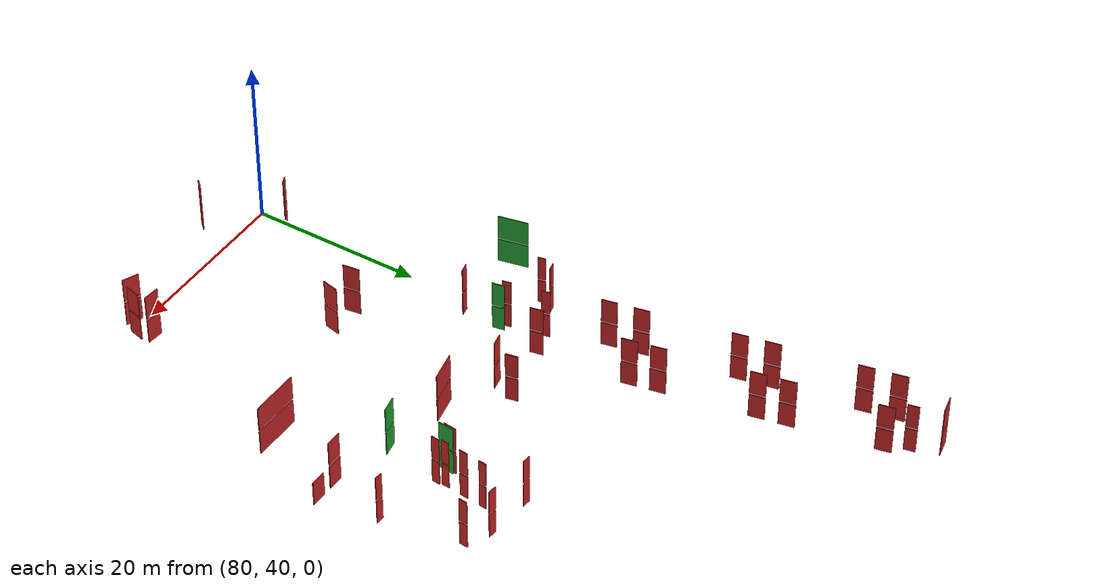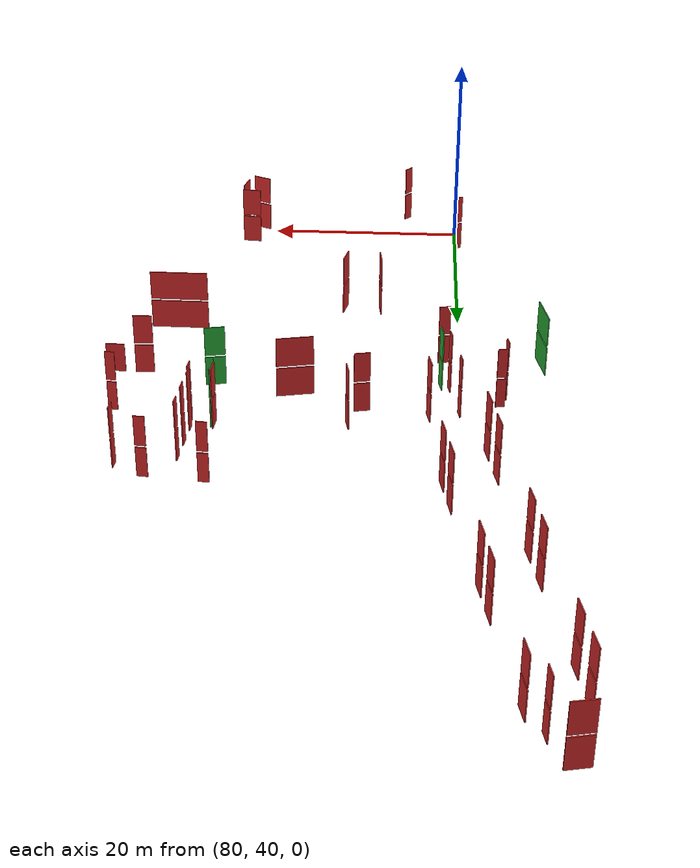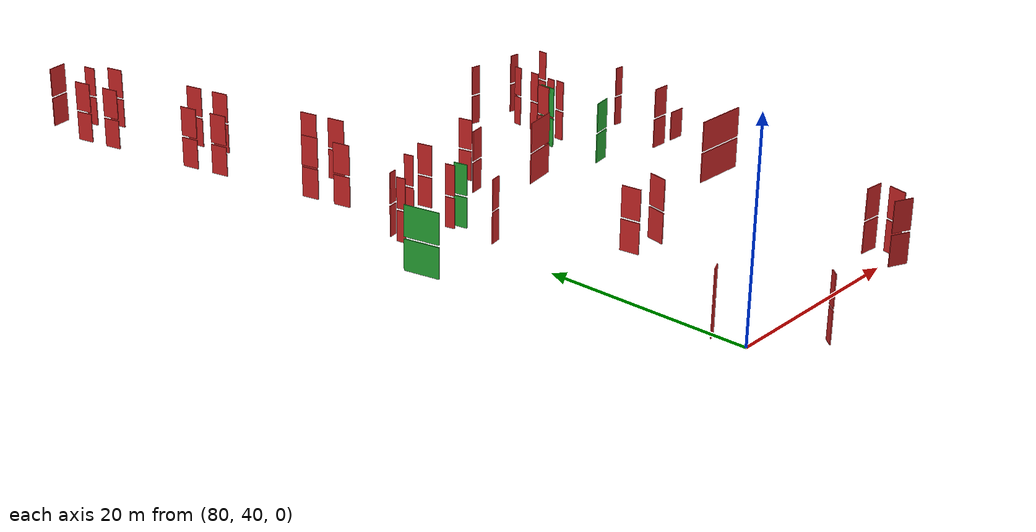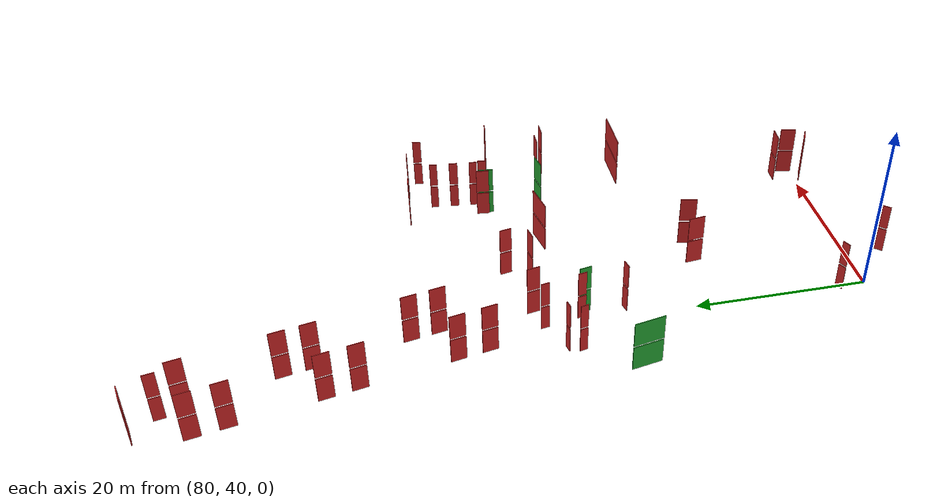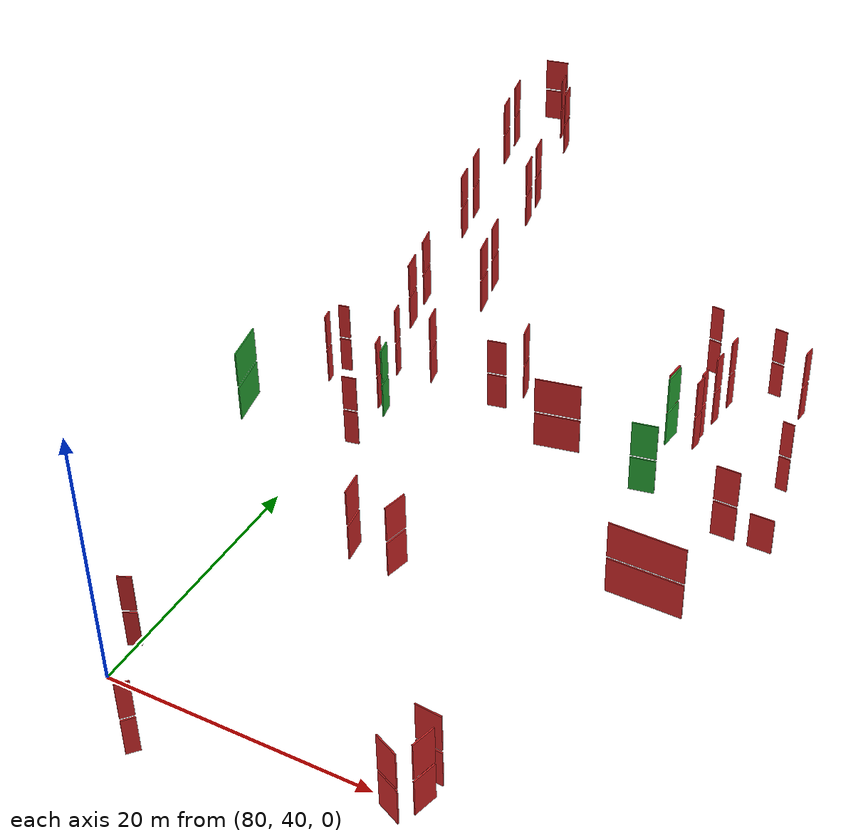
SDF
<sdf version="1.6">
 <world name="default">
  <model name="door_80.2_77.2_0.0">
   <static>true</static>
   <pose>80.19499999997788 77.22500000009313 1.5 0 0 -1.3773690000310248</pose>
   <link name="link">
    <visual name="visual">
     <geometry><box><size>0.9884331031966657 0.1 3</size></box></geometry>
     <material>
      <script><uri>file://media/materials/scripts/gazebo.material</uri><name>Gazebo/Red</name></script>
     </material>
    </visual>
   </link>
  </model>
  <model name="door_112.2_77.9_0.0">
   <static>true</static>
   <pose>112.1699999999837 77.92500000004657 1.5 0 0 -0.09966865283695012</pose>
   <link name="link">
    <visual name="visual">
     <geometry><box><size>0.9044888059555555 0.1 3</size></box></geometry>
     <material>
      <script><uri>file://media/materials/scripts/gazebo.material</uri><name>Gazebo/Red</name></script>
     </material>
    </visual>
   </link>
  </model>
  <model name="door_104.7_79.7_0.0">
   <static>true</static>
   <pose>104.70999999999185 79.65999999991618 1.5 0 0 -1.6724851785951633</pose>
   <link name="link">
    <visual name="visual">
     <geometry><box><size>0.9850888284669952 0.1 3</size></box></geometry>
     <material>
      <script><uri>file://media/materials/scripts/gazebo.material</uri><name>Gazebo/Red</name></script>
     </material>
    </visual>
   </link>
  </model>
  <model name="door_104.9_83.1_0.0">
   <static>true</static>
   <pose>104.86999999999534 83.12999999988824 1.5 0 0 1.4711276743267871</pose>
   <link name="link">
    <visual name="visual">
     <geometry><box><size>1.0049875621097721 0.1 3</size></box></geometry>
     <material>
      <script><uri>file://media/materials/scripts/gazebo.material</uri><name>Gazebo/Red</name></script>
     </material>
    </visual>
   </link>
  </model>
  <model name="door_105.1_85.5_0.0">
   <static>true</static>
   <pose>105.10999999998603 85.53499999991618 1.5 0 0 1.4589060606653106</pose>
   <link name="link">
    <visual name="visual">
     <geometry><box><size>0.895600357429266 0.1 3</size></box></geometry>
     <material>
      <script><uri>file://media/materials/scripts/gazebo.material</uri><name>Gazebo/Red</name></script>
     </material>
    </visual>
   </link>
  </model>
  <model name="door_110.6_86.8_0.0">
   <static>true</static>
   <pose>110.55999999999767 86.81499999994412 1.5 0 0 1.4701276746829237</pose>
   <link name="link">
    <visual name="visual">
     <geometry><box><size>0.9950376879485058 0.1 3</size></box></geometry>
     <material>
      <script><uri>file://media/materials/scripts/gazebo.material</uri><name>Gazebo/Red</name></script>
     </material>
    </visual>
   </link>
  </model>
  <model name="door_102.4_88.9_0.0">
   <static>true</static>
   <pose>102.38000000000466 88.94000000017695 1.5 0 0 -0.09966865258337218</pose>
   <link name="link">
    <visual name="visual">
     <geometry><box><size>1.004987562121356 0.1 3</size></box></geometry>
     <material>
      <script><uri>file://media/materials/scripts/gazebo.material</uri><name>Gazebo/Red</name></script>
     </material>
    </visual>
   </link>
  </model>
  <model name="door_107.8_88.4_0.0">
   <static>true</static>
   <pose>107.78999999997905 88.4000000001397 1.5 0 0 -0.09966865258337218</pose>
   <link name="link">
    <visual name="visual">
     <geometry><box><size>1.004987562121356 0.1 3</size></box></geometry>
     <material>
      <script><uri>file://media/materials/scripts/gazebo.material</uri><name>Gazebo/Red</name></script>
     </material>
    </visual>
   </link>
  </model>
  <model name="door_102.5_80.0_0.0">
   <static>true</static>
   <pose>102.52499999999418 79.9550000000745 1.5 0 0 -1.6711294309773623</pose>
   <link name="link">
    <visual name="visual">
     <geometry><box><size>1.4975313020620318 0.1 3</size></box></geometry>
     <material>
      <script><uri>file://media/materials/scripts/gazebo.material</uri><name>Gazebo/Red</name></script>
     </material>
    </visual>
   </link>
  </model>
  <model name="door_102.7_79.6_0.0">
   <static>true</static>
   <pose>102.69000000006054 79.59000000008382 1.5 0 0 1.4711276742268928</pose>
   <link name="link">
    <visual name="visual">
     <geometry><box><size>1.808977612096451 0.1 3</size></box></geometry>
     <material>
      <script><uri>file://media/materials/scripts/gazebo.material</uri><name>Gazebo/Green</name></script>
     </material>
    </visual>
   </link>
  </model>
  <model name="door_104.6_80.8_0.0">
   <static>true</static>
   <pose>104.625 80.77000000001863 1.5 0 0 -1.6704649792092168</pose>
   <link name="link">
    <visual name="visual">
     <geometry><box><size>0.904488806268317 0.1 3</size></box></geometry>
     <material>
      <script><uri>file://media/materials/scripts/gazebo.material</uri><name>Gazebo/Red</name></script>
     </material>
    </visual>
   </link>
  </model>
  <model name="door_113.0_71.1_0.0">
   <static>true</static>
   <pose>113.03500000000349 71.13000000012107 1.5 0 0 3.1305433795001205</pose>
   <link name="link">
    <visual name="visual">
     <geometry><box><size>1.810110493862824 0.1 3</size></box></geometry>
     <material>
      <script><uri>file://media/materials/scripts/gazebo.material</uri><name>Gazebo/Red</name></script>
     </material>
    </visual>
   </link>
  </model>
  <model name="door_110.2_71.2_0.0">
   <static>true</static>
   <pose>110.23500000001513 71.17000000015832 1.5 0 0 3.1305433795001205</pose>
   <link name="link">
    <visual name="visual">
     <geometry><box><size>1.810110493862824 0.1 3</size></box></geometry>
     <material>
      <script><uri>file://media/materials/scripts/gazebo.material</uri><name>Gazebo/Red</name></script>
     </material>
    </visual>
   </link>
  </model>
  <model name="door_103.2_73.0_0.0">
   <static>true</static>
   <pose>103.15500000014435 73.02000000025146 1.5 0 0 -2.9552965370366153</pose>
   <link name="link">
    <visual name="visual">
     <geometry><box><size>1.9436306230085285 0.1 3</size></box></geometry>
     <material>
      <script><uri>file://media/materials/scripts/gazebo.material</uri><name>Gazebo/Green</name></script>
     </material>
    </visual>
   </link>
  </model>
  <model name="door_71.7_114.6_0.0">
   <static>true</static>
   <pose>71.72999999998137 114.55000000004657 1.5 0 0 -1.3690339825092397</pose>
   <link name="link">
    <visual name="visual">
     <geometry><box><size>1.796440926065282 0.1 3</size></box></geometry>
     <material>
      <script><uri>file://media/materials/scripts/gazebo.material</uri><name>Gazebo/Red</name></script>
     </material>
    </visual>
   </link>
  </model>
  <model name="door_72.4_111.0_0.0">
   <static>true</static>
   <pose>72.43499999999767 111.04000000003725 1.5 0 0 -1.3744936626731843</pose>
   <link name="link">
    <visual name="visual">
     <geometry><box><size>1.7944637079631676 0.1 3</size></box></geometry>
     <material>
      <script><uri>file://media/materials/scripts/gazebo.material</uri><name>Gazebo/Red</name></script>
     </material>
    </visual>
   </link>
  </model>
  <model name="door_74.4_101.3_0.0">
   <static>true</static>
   <pose>74.38000000000466 101.26000000000931 1.5 0 0 -1.3690339825092397</pose>
   <link name="link">
    <visual name="visual">
     <geometry><box><size>1.796440926065282 0.1 3</size></box></geometry>
     <material>
      <script><uri>file://media/materials/scripts/gazebo.material</uri><name>Gazebo/Red</name></script>
     </material>
    </visual>
   </link>
  </model>
  <model name="door_75.1_97.8_0.0">
   <static>true</static>
   <pose>75.0800000000163 97.75 1.5 0 0 -1.3690339824572944</pose>
   <link name="link">
    <visual name="visual">
     <geometry><box><size>1.7964409256090668 0.1 3</size></box></geometry>
     <material>
      <script><uri>file://media/materials/scripts/gazebo.material</uri><name>Gazebo/Red</name></script>
     </material>
    </visual>
   </link>
  </model>
  <model name="door_77.2_87.2_0.0">
   <static>true</static>
   <pose>77.19000000000233 87.18999999994412 1.5 0 0 -1.3690339824572944</pose>
   <link name="link">
    <visual name="visual">
     <geometry><box><size>1.7964409256090668 0.1 3</size></box></geometry>
     <material>
      <script><uri>file://media/materials/scripts/gazebo.material</uri><name>Gazebo/Red</name></script>
     </material>
    </visual>
   </link>
  </model>
  <model name="door_77.9_83.7_0.0">
   <static>true</static>
   <pose>77.88500000000931 83.6699999999255 1.5 0 0 -1.3744936626731843</pose>
   <link name="link">
    <visual name="visual">
     <geometry><box><size>1.7944637079631676 0.1 3</size></box></geometry>
     <material>
      <script><uri>file://media/materials/scripts/gazebo.material</uri><name>Gazebo/Red</name></script>
     </material>
    </visual>
   </link>
  </model>
  <model name="door_76.4_75.6_0.0">
   <static>true</static>
   <pose>76.39000000001397 75.57500000018626 1.5 0 0 0.19083110263865674</pose>
   <link name="link">
    <visual name="visual">
     <geometry><box><size>0.8962700485807075 0.1 3</size></box></geometry>
     <material>
      <script><uri>file://media/materials/scripts/gazebo.material</uri><name>Gazebo/Red</name></script>
     </material>
    </visual>
   </link>
  </model>
  <model name="door_75.8_74.0_0.0">
   <static>true</static>
   <pose>75.83999999999651 74.0 1.5 0 0 -1.3690339824572944</pose>
   <link name="link">
    <visual name="visual">
     <geometry><box><size>0.8982204628045334 0.1 3</size></box></geometry>
     <material>
      <script><uri>file://media/materials/scripts/gazebo.material</uri><name>Gazebo/Red</name></script>
     </material>
    </visual>
   </link>
  </model>
  <model name="door_78.6_105.4_0.0">
   <static>true</static>
   <pose>78.55999999999767 105.38999999989755 1.5 0 0 -1.3690339825092397</pose>
   <link name="link">
    <visual name="visual">
     <geometry><box><size>1.796440926065282 0.1 3</size></box></geometry>
     <material>
      <script><uri>file://media/materials/scripts/gazebo.material</uri><name>Gazebo/Red</name></script>
     </material>
    </visual>
   </link>
  </model>
  <model name="door_76.5_115.5_0.0">
   <static>true</static>
   <pose>76.53999999997905 115.50500000012107 1.5 0 0 -1.3701434494846443</pose>
   <link name="link">
    <visual name="visual">
     <geometry><box><size>1.8062391868343128 0.1 3</size></box></geometry>
     <material>
      <script><uri>file://media/materials/scripts/gazebo.material</uri><name>Gazebo/Red</name></script>
     </material>
    </visual>
   </link>
  </model>
  <model name="door_79.2_102.2_0.0">
   <static>true</static>
   <pose>79.18499999999767 102.20999999996275 1.5 0 0 -1.3744936626731843</pose>
   <link name="link">
    <visual name="visual">
     <geometry><box><size>1.7944637079631676 0.1 3</size></box></geometry>
     <material>
      <script><uri>file://media/materials/scripts/gazebo.material</uri><name>Gazebo/Red</name></script>
     </material>
    </visual>
   </link>
  </model>
  <model name="door_81.3_91.7_0.0">
   <static>true</static>
   <pose>81.2949999999837 91.65999999991618 1.5 0 0 -1.374493662723798</pose>
   <link name="link">
    <visual name="visual">
     <geometry><box><size>1.7944637084198858 0.1 3</size></box></geometry>
     <material>
      <script><uri>file://media/materials/scripts/gazebo.material</uri><name>Gazebo/Red</name></script>
     </material>
    </visual>
   </link>
  </model>
  <model name="door_81.1_72.9_0.0">
   <static>true</static>
   <pose>81.05000000001746 72.92000000015832 1.5 0 0 1.7721134351846652</pose>
   <link name="link">
    <visual name="visual">
     <geometry><box><size>1.0001999799880765 0.1 3</size></box></geometry>
     <material>
      <script><uri>file://media/materials/scripts/gazebo.material</uri><name>Gazebo/Red</name></script>
     </material>
    </visual>
   </link>
  </model>
  <model name="door_81.6_67.9_0.0">
   <static>true</static>
   <pose>81.55000000001746 67.88999999989755 1.5 0 0 0.2009542638673007</pose>
   <link name="link">
    <visual name="visual">
     <geometry><box><size>1.1021796587332557 0.1 3</size></box></geometry>
     <material>
      <script><uri>file://media/materials/scripts/gazebo.material</uri><name>Gazebo/Red</name></script>
     </material>
    </visual>
   </link>
  </model>
  <model name="door_75.1_117.8_0.0">
   <static>true</static>
   <pose>75.06500000000233 117.75500000012107 1.5 0 0 -1.376431060702658</pose>
   <link name="link">
    <visual name="visual">
     <geometry><box><size>1.2943724348298333 0.1 3</size></box></geometry>
     <material>
      <script><uri>file://media/materials/scripts/gazebo.material</uri><name>Gazebo/Red</name></script>
     </material>
    </visual>
   </link>
  </model>
  <model name="door_108.0_62.3_0.0">
   <static>true</static>
   <pose>107.99499999999534 62.34499999997206 1.5 0 0 -0.012258580285916719</pose>
   <link name="link">
    <visual name="visual">
     <geometry><box><size>5.710429055644689 0.1 3</size></box></geometry>
     <material>
      <script><uri>file://media/materials/scripts/gazebo.material</uri><name>Gazebo/Red</name></script>
     </material>
    </visual>
   </link>
  </model>
  <model name="door_79.8_43.2_0.0">
   <static>true</static>
   <pose>79.82500000001164 43.18500000005588 1.5 0 0 0.42331075582642225</pose>
   <link name="link">
    <visual name="visual">
     <geometry><box><size>0.9980981916532635 0.1 3</size></box></geometry>
     <material>
      <script><uri>file://media/materials/scripts/gazebo.material</uri><name>Gazebo/Red</name></script>
     </material>
    </visual>
   </link>
  </model>
  <model name="door_85.3_35.8_0.0">
   <static>true</static>
   <pose>85.27999999999884 35.77000000001863 1.5 0 0 0.8424789459730314</pose>
   <link name="link">
    <visual name="visual">
     <geometry><box><size>0.9915644206490059 0.1 3</size></box></geometry>
     <material>
      <script><uri>file://media/materials/scripts/gazebo.material</uri><name>Gazebo/Red</name></script>
     </material>
    </visual>
   </link>
  </model>
  <model name="door_102.6_42.5_0.0">
   <static>true</static>
   <pose>102.60500000001048 42.48999999999069 1.5 0 0 -0.08271241528552369</pose>
   <link name="link">
    <visual name="visual">
     <geometry><box><size>1.9366207682124321 0.1 3</size></box></geometry>
     <material>
      <script><uri>file://media/materials/scripts/gazebo.material</uri><name>Gazebo/Red</name></script>
     </material>
    </visual>
   </link>
  </model>
  <model name="door_101.7_39.1_0.0">
   <static>true</static>
   <pose>101.71000000002095 39.06499999994412 1.5 0 0 -0.4219085234522241</pose>
   <link name="link">
    <visual name="visual">
     <geometry><box><size>1.9291708063548034 0.1 3</size></box></geometry>
     <material>
      <script><uri>file://media/materials/scripts/gazebo.material</uri><name>Gazebo/Red</name></script>
     </material>
    </visual>
   </link>
  </model>
  <model name="door_103.3_40.6_0.0">
   <static>true</static>
   <pose>103.3299999999872 40.59000000008382 1.5 0 0 -1.823690391929414</pose>
   <link name="link">
    <visual name="visual">
     <geometry><box><size>1.8384776308918926 0.1 3</size></box></geometry>
     <material>
      <script><uri>file://media/materials/scripts/gazebo.material</uri><name>Gazebo/Red</name></script>
     </material>
    </visual>
   </link>
  </model>
  <model name="door_87.9_57.8_0.0">
   <static>true</static>
   <pose>87.93499999999767 57.77499999990687 1.5 0 0 -1.4509545189031208</pose>
   <link name="link">
    <visual name="visual">
     <geometry><box><size>1.9237983263743257 0.1 3</size></box></geometry>
     <material>
      <script><uri>file://media/materials/scripts/gazebo.material</uri><name>Gazebo/Red</name></script>
     </material>
    </visual>
   </link>
  </model>
  <model name="door_91.5_57.6_0.0">
   <static>true</static>
   <pose>91.49500000002445 57.58999999985099 1.5 0 0 -1.795651920405678</pose>
   <link name="link">
    <visual name="visual">
     <geometry><box><size>1.9285486770039746 0.1 3</size></box></geometry>
     <material>
      <script><uri>file://media/materials/scripts/gazebo.material</uri><name>Gazebo/Red</name></script>
     </material>
    </visual>
   </link>
  </model>
  <model name="door_89.2_76.9_0.0">
   <static>true</static>
   <pose>89.17999999999302 76.94499999983236 1.5 0 0 0.19349440931601616</pose>
   <link name="link">
    <visual name="visual">
     <geometry><box><size>1.508144555394632 0.1 3</size></box></geometry>
     <material>
      <script><uri>file://media/materials/scripts/gazebo.material</uri><name>Gazebo/Red</name></script>
     </material>
    </visual>
   </link>
  </model>
  <model name="door_81.9_88.5_0.0">
   <static>true</static>
   <pose>81.91500000000815 88.53499999991618 1.5 0 0 -1.3755746765469539</pose>
   <link name="link">
    <visual name="visual">
     <geometry><box><size>1.8042727066855455 0.1 3</size></box></geometry>
     <material>
      <script><uri>file://media/materials/scripts/gazebo.material</uri><name>Gazebo/Red</name></script>
     </material>
    </visual>
   </link>
  </model>
  <model name="door_83.0_77.9_0.0">
   <static>true</static>
   <pose>83.01999999998952 77.89500000001863 1.5 0 0 -1.3721104451170056</pose>
   <link name="link">
    <visual name="visual">
     <geometry><box><size>1.51990131280261 0.1 3</size></box></geometry>
     <material>
      <script><uri>file://media/materials/scripts/gazebo.material</uri><name>Gazebo/Red</name></script>
     </material>
    </visual>
   </link>
  </model>
  <model name="door_81.9_72.4_0.0">
   <static>true</static>
   <pose>81.875 72.38500000000931 1.5 0 0 1.7681918866447774</pose>
   <link name="link">
    <visual name="visual">
     <geometry><box><size>1.3767352687650285 0.1 3</size></box></geometry>
     <material>
      <script><uri>file://media/materials/scripts/gazebo.material</uri><name>Gazebo/Green</name></script>
     </material>
    </visual>
   </link>
  </model>
  <model name="door_73.0_120.5_0.0">
   <static>true</static>
   <pose>73.04000000000815 120.50499999988824 1.5 0 0 0.19646185337495456</pose>
   <link name="link">
    <visual name="visual">
     <geometry><box><size>2.100404722931416 0.1 3</size></box></geometry>
     <material>
      <script><uri>file://media/materials/scripts/gazebo.material</uri><name>Gazebo/Red</name></script>
     </material>
    </visual>
   </link>
  </model>
  <model name="door_95.5_74.5_0.0">
   <static>true</static>
   <pose>95.51500000001397 74.51000000000931 1.5 0 0 0.19351316121262999</pose>
   <link name="link">
    <visual name="visual">
     <geometry><box><size>3.5360005656156344 0.1 3</size></box></geometry>
     <material>
      <script><uri>file://media/materials/scripts/gazebo.material</uri><name>Gazebo/Red</name></script>
     </material>
    </visual>
   </link>
  </model>
  <model name="door_72.2_68.0_0.0">
   <static>true</static>
   <pose>72.16500000003725 68.04500000015832 1.5 0 0 1.767083239622093</pose>
   <link name="link">
    <visual name="visual">
     <geometry><box><size>3.5379372523187618 0.1 3</size></box></geometry>
     <material>
      <script><uri>file://media/materials/scripts/gazebo.material</uri><name>Gazebo/Green</name></script>
     </material>
    </visual>
   </link>
  </model>
  <model name="door_90.4_79.5_0.0">
   <static>true</static>
   <pose>90.41000000000349 79.52499999990687 1.5 0 0 -1.369193218179265</pose>
   <link name="link">
    <visual name="visual">
     <geometry><box><size>1.3983204211800917 0.1 3</size></box></geometry>
     <material>
      <script><uri>file://media/materials/scripts/gazebo.material</uri><name>Gazebo/Red</name></script>
     </material>
    </visual>
   </link>
  </model>
  <model name="door_80.2_77.2_3.2">
   <static>true</static>
   <pose>80.19499999997788 77.22500000009313 4.7 0 0 -1.3773690000310248</pose>
   <link name="link">
    <visual name="visual">
     <geometry><box><size>0.9884331031966657 0.1 3</size></box></geometry>
     <material>
      <script><uri>file://media/materials/scripts/gazebo.material</uri><name>Gazebo/Red</name></script>
     </material>
    </visual>
   </link>
  </model>
  <model name="door_112.2_77.9_3.2">
   <static>true</static>
   <pose>112.1699999999837 77.92500000004657 4.7 0 0 -0.09966865283695012</pose>
   <link name="link">
    <visual name="visual">
     <geometry><box><size>0.9044888059555555 0.1 3</size></box></geometry>
     <material>
      <script><uri>file://media/materials/scripts/gazebo.material</uri><name>Gazebo/Red</name></script>
     </material>
    </visual>
   </link>
  </model>
  <model name="door_104.7_79.7_3.2">
   <static>true</static>
   <pose>104.70999999999185 79.65999999991618 4.7 0 0 -1.6724851785951633</pose>
   <link name="link">
    <visual name="visual">
     <geometry><box><size>0.9850888284669952 0.1 3</size></box></geometry>
     <material>
      <script><uri>file://media/materials/scripts/gazebo.material</uri><name>Gazebo/Red</name></script>
     </material>
    </visual>
   </link>
  </model>
  <model name="door_104.9_83.1_3.2">
   <static>true</static>
   <pose>104.86999999999534 83.12999999988824 4.7 0 0 1.4711276743267871</pose>
   <link name="link">
    <visual name="visual">
     <geometry><box><size>1.0049875621097721 0.1 3</size></box></geometry>
     <material>
      <script><uri>file://media/materials/scripts/gazebo.material</uri><name>Gazebo/Red</name></script>
     </material>
    </visual>
   </link>
  </model>
  <model name="door_105.1_85.5_3.2">
   <static>true</static>
   <pose>105.10999999998603 85.53499999991618 4.7 0 0 1.4589060606653106</pose>
   <link name="link">
    <visual name="visual">
     <geometry><box><size>0.895600357429266 0.1 3</size></box></geometry>
     <material>
      <script><uri>file://media/materials/scripts/gazebo.material</uri><name>Gazebo/Red</name></script>
     </material>
    </visual>
   </link>
  </model>
  <model name="door_110.6_86.8_3.2">
   <static>true</static>
   <pose>110.55999999999767 86.81499999994412 4.7 0 0 1.4701276746829237</pose>
   <link name="link">
    <visual name="visual">
     <geometry><box><size>0.9950376879485058 0.1 3</size></box></geometry>
     <material>
      <script><uri>file://media/materials/scripts/gazebo.material</uri><name>Gazebo/Red</name></script>
     </material>
    </visual>
   </link>
  </model>
  <model name="door_102.4_88.9_3.2">
   <static>true</static>
   <pose>102.38000000000466 88.94000000017695 4.7 0 0 -0.09966865258337218</pose>
   <link name="link">
    <visual name="visual">
     <geometry><box><size>1.004987562121356 0.1 3</size></box></geometry>
     <material>
      <script><uri>file://media/materials/scripts/gazebo.material</uri><name>Gazebo/Red</name></script>
     </material>
    </visual>
   </link>
  </model>
  <model name="door_107.8_88.4_3.2">
   <static>true</static>
   <pose>107.78999999997905 88.4000000001397 4.7 0 0 -0.09966865258337218</pose>
   <link name="link">
    <visual name="visual">
     <geometry><box><size>1.004987562121356 0.1 3</size></box></geometry>
     <material>
      <script><uri>file://media/materials/scripts/gazebo.material</uri><name>Gazebo/Red</name></script>
     </material>
    </visual>
   </link>
  </model>
  <model name="door_102.5_80.0_3.2">
   <static>true</static>
   <pose>102.52499999999418 79.9550000000745 4.7 0 0 -1.6711294309773623</pose>
   <link name="link">
    <visual name="visual">
     <geometry><box><size>1.4975313020620318 0.1 3</size></box></geometry>
     <material>
      <script><uri>file://media/materials/scripts/gazebo.material</uri><name>Gazebo/Red</name></script>
     </material>
    </visual>
   </link>
  </model>
  <model name="door_102.7_79.6_3.2">
   <static>true</static>
   <pose>102.69000000006054 79.59000000008382 4.7 0 0 1.4711276742268928</pose>
   <link name="link">
    <visual name="visual">
     <geometry><box><size>1.808977612096451 0.1 3</size></box></geometry>
     <material>
      <script><uri>file://media/materials/scripts/gazebo.material</uri><name>Gazebo/Green</name></script>
     </material>
    </visual>
   </link>
  </model>
  <model name="door_104.6_80.8_3.2">
   <static>true</static>
   <pose>104.625 80.77000000001863 4.7 0 0 -1.6704649792092168</pose>
   <link name="link">
    <visual name="visual">
     <geometry><box><size>0.904488806268317 0.1 3</size></box></geometry>
     <material>
      <script><uri>file://media/materials/scripts/gazebo.material</uri><name>Gazebo/Red</name></script>
     </material>
    </visual>
   </link>
  </model>
  <model name="door_110.2_71.2_3.2">
   <static>true</static>
   <pose>110.23500000001513 71.17000000015832 4.7 0 0 3.1305433795001205</pose>
   <link name="link">
    <visual name="visual">
     <geometry><box><size>1.810110493862824 0.1 3</size></box></geometry>
     <material>
      <script><uri>file://media/materials/scripts/gazebo.material</uri><name>Gazebo/Red</name></script>
     </material>
    </visual>
   </link>
  </model>
  <model name="door_103.2_73.0_3.2">
   <static>true</static>
   <pose>103.15500000014435 73.02000000025146 4.7 0 0 -2.9552965370366153</pose>
   <link name="link">
    <visual name="visual">
     <geometry><box><size>1.9436306230085285 0.1 3</size></box></geometry>
     <material>
      <script><uri>file://media/materials/scripts/gazebo.material</uri><name>Gazebo/Green</name></script>
     </material>
    </visual>
   </link>
  </model>
  <model name="door_71.7_114.6_3.2">
   <static>true</static>
   <pose>71.72999999998137 114.55000000004657 4.7 0 0 -1.3690339825092397</pose>
   <link name="link">
    <visual name="visual">
     <geometry><box><size>1.796440926065282 0.1 3</size></box></geometry>
     <material>
      <script><uri>file://media/materials/scripts/gazebo.material</uri><name>Gazebo/Red</name></script>
     </material>
    </visual>
   </link>
  </model>
  <model name="door_72.4_111.0_3.2">
   <static>true</static>
   <pose>72.43499999999767 111.04000000003725 4.7 0 0 -1.3744936626731843</pose>
   <link name="link">
    <visual name="visual">
     <geometry><box><size>1.7944637079631676 0.1 3</size></box></geometry>
     <material>
      <script><uri>file://media/materials/scripts/gazebo.material</uri><name>Gazebo/Red</name></script>
     </material>
    </visual>
   </link>
  </model>
  <model name="door_74.4_101.3_3.2">
   <static>true</static>
   <pose>74.38000000000466 101.26000000000931 4.7 0 0 -1.3690339825092397</pose>
   <link name="link">
    <visual name="visual">
     <geometry><box><size>1.796440926065282 0.1 3</size></box></geometry>
     <material>
      <script><uri>file://media/materials/scripts/gazebo.material</uri><name>Gazebo/Red</name></script>
     </material>
    </visual>
   </link>
  </model>
  <model name="door_75.1_97.8_3.2">
   <static>true</static>
   <pose>75.0800000000163 97.75 4.7 0 0 -1.3690339824572944</pose>
   <link name="link">
    <visual name="visual">
     <geometry><box><size>1.7964409256090668 0.1 3</size></box></geometry>
     <material>
      <script><uri>file://media/materials/scripts/gazebo.material</uri><name>Gazebo/Red</name></script>
     </material>
    </visual>
   </link>
  </model>
  <model name="door_77.2_87.2_3.2">
   <static>true</static>
   <pose>77.19000000000233 87.18999999994412 4.7 0 0 -1.3690339824572944</pose>
   <link name="link">
    <visual name="visual">
     <geometry><box><size>1.7964409256090668 0.1 3</size></box></geometry>
     <material>
      <script><uri>file://media/materials/scripts/gazebo.material</uri><name>Gazebo/Red</name></script>
     </material>
    </visual>
   </link>
  </model>
  <model name="door_77.9_83.7_3.2">
   <static>true</static>
   <pose>77.88500000000931 83.6699999999255 4.7 0 0 -1.3744936626731843</pose>
   <link name="link">
    <visual name="visual">
     <geometry><box><size>1.7944637079631676 0.1 3</size></box></geometry>
     <material>
      <script><uri>file://media/materials/scripts/gazebo.material</uri><name>Gazebo/Red</name></script>
     </material>
    </visual>
   </link>
  </model>
  <model name="door_76.4_75.6_3.2">
   <static>true</static>
   <pose>76.39000000001397 75.57500000018626 4.7 0 0 0.19083110263865674</pose>
   <link name="link">
    <visual name="visual">
     <geometry><box><size>0.8962700485807075 0.1 3</size></box></geometry>
     <material>
      <script><uri>file://media/materials/scripts/gazebo.material</uri><name>Gazebo/Red</name></script>
     </material>
    </visual>
   </link>
  </model>
  <model name="door_75.8_74.0_3.2">
   <static>true</static>
   <pose>75.83999999999651 74.0 4.7 0 0 -1.3690339824572944</pose>
   <link name="link">
    <visual name="visual">
     <geometry><box><size>0.8982204628045334 0.1 3</size></box></geometry>
     <material>
      <script><uri>file://media/materials/scripts/gazebo.material</uri><name>Gazebo/Red</name></script>
     </material>
    </visual>
   </link>
  </model>
  <model name="door_78.6_105.4_3.2">
   <static>true</static>
   <pose>78.55999999999767 105.38999999989755 4.7 0 0 -1.3690339825092397</pose>
   <link name="link">
    <visual name="visual">
     <geometry><box><size>1.796440926065282 0.1 3</size></box></geometry>
     <material>
      <script><uri>file://media/materials/scripts/gazebo.material</uri><name>Gazebo/Red</name></script>
     </material>
    </visual>
   </link>
  </model>
  <model name="door_76.5_115.5_3.2">
   <static>true</static>
   <pose>76.53999999997905 115.50500000012107 4.7 0 0 -1.3701434494846443</pose>
   <link name="link">
    <visual name="visual">
     <geometry><box><size>1.8062391868343128 0.1 3</size></box></geometry>
     <material>
      <script><uri>file://media/materials/scripts/gazebo.material</uri><name>Gazebo/Red</name></script>
     </material>
    </visual>
   </link>
  </model>
  <model name="door_79.2_102.2_3.2">
   <static>true</static>
   <pose>79.18499999999767 102.20999999996275 4.7 0 0 -1.3744936626731843</pose>
   <link name="link">
    <visual name="visual">
     <geometry><box><size>1.7944637079631676 0.1 3</size></box></geometry>
     <material>
      <script><uri>file://media/materials/scripts/gazebo.material</uri><name>Gazebo/Red</name></script>
     </material>
    </visual>
   </link>
  </model>
  <model name="door_81.3_91.7_3.2">
   <static>true</static>
   <pose>81.2949999999837 91.65999999991618 4.7 0 0 -1.374493662723798</pose>
   <link name="link">
    <visual name="visual">
     <geometry><box><size>1.7944637084198858 0.1 3</size></box></geometry>
     <material>
      <script><uri>file://media/materials/scripts/gazebo.material</uri><name>Gazebo/Red</name></script>
     </material>
    </visual>
   </link>
  </model>
  <model name="door_81.1_72.9_3.2">
   <static>true</static>
   <pose>81.05000000001746 72.92000000015832 4.7 0 0 1.7721134351846652</pose>
   <link name="link">
    <visual name="visual">
     <geometry><box><size>1.0001999799880765 0.1 3</size></box></geometry>
     <material>
      <script><uri>file://media/materials/scripts/gazebo.material</uri><name>Gazebo/Red</name></script>
     </material>
    </visual>
   </link>
  </model>
  <model name="door_81.6_67.9_3.2">
   <static>true</static>
   <pose>81.55000000001746 67.88999999989755 4.7 0 0 0.2009542638673007</pose>
   <link name="link">
    <visual name="visual">
     <geometry><box><size>1.1021796587332557 0.1 3</size></box></geometry>
     <material>
      <script><uri>file://media/materials/scripts/gazebo.material</uri><name>Gazebo/Red</name></script>
     </material>
    </visual>
   </link>
  </model>
  <model name="door_75.1_117.8_3.2">
   <static>true</static>
   <pose>75.06500000000233 117.75500000012107 4.7 0 0 -1.376431060702658</pose>
   <link name="link">
    <visual name="visual">
     <geometry><box><size>1.2943724348298333 0.1 3</size></box></geometry>
     <material>
      <script><uri>file://media/materials/scripts/gazebo.material</uri><name>Gazebo/Red</name></script>
     </material>
    </visual>
   </link>
  </model>
  <model name="door_108.0_62.3_3.2">
   <static>true</static>
   <pose>107.99499999999534 62.34499999997206 4.7 0 0 -0.012258580285916719</pose>
   <link name="link">
    <visual name="visual">
     <geometry><box><size>5.710429055644689 0.1 3</size></box></geometry>
     <material>
      <script><uri>file://media/materials/scripts/gazebo.material</uri><name>Gazebo/Red</name></script>
     </material>
    </visual>
   </link>
  </model>
  <model name="door_79.8_43.2_3.2">
   <static>true</static>
   <pose>79.82500000001164 43.18500000005588 4.7 0 0 0.42331075582642225</pose>
   <link name="link">
    <visual name="visual">
     <geometry><box><size>0.9980981916532635 0.1 3</size></box></geometry>
     <material>
      <script><uri>file://media/materials/scripts/gazebo.material</uri><name>Gazebo/Red</name></script>
     </material>
    </visual>
   </link>
  </model>
  <model name="door_85.3_35.8_3.2">
   <static>true</static>
   <pose>85.27999999999884 35.77000000001863 4.7 0 0 0.8424789459730314</pose>
   <link name="link">
    <visual name="visual">
     <geometry><box><size>0.9915644206490059 0.1 3</size></box></geometry>
     <material>
      <script><uri>file://media/materials/scripts/gazebo.material</uri><name>Gazebo/Red</name></script>
     </material>
    </visual>
   </link>
  </model>
  <model name="door_102.6_42.5_3.2">
   <static>true</static>
   <pose>102.60500000001048 42.48999999999069 4.7 0 0 -0.08271241528552369</pose>
   <link name="link">
    <visual name="visual">
     <geometry><box><size>1.9366207682124321 0.1 3</size></box></geometry>
     <material>
      <script><uri>file://media/materials/scripts/gazebo.material</uri><name>Gazebo/Red</name></script>
     </material>
    </visual>
   </link>
  </model>
  <model name="door_101.7_39.1_3.2">
   <static>true</static>
   <pose>101.71000000002095 39.06499999994412 4.7 0 0 -0.4219085234522241</pose>
   <link name="link">
    <visual name="visual">
     <geometry><box><size>1.9291708063548034 0.1 3</size></box></geometry>
     <material>
      <script><uri>file://media/materials/scripts/gazebo.material</uri><name>Gazebo/Red</name></script>
     </material>
    </visual>
   </link>
  </model>
  <model name="door_103.3_40.6_3.2">
   <static>true</static>
   <pose>103.3299999999872 40.59000000008382 4.7 0 0 -1.823690391929414</pose>
   <link name="link">
    <visual name="visual">
     <geometry><box><size>1.8384776308918926 0.1 3</size></box></geometry>
     <material>
      <script><uri>file://media/materials/scripts/gazebo.material</uri><name>Gazebo/Red</name></script>
     </material>
    </visual>
   </link>
  </model>
  <model name="door_87.9_57.8_3.2">
   <static>true</static>
   <pose>87.93499999999767 57.77499999990687 4.7 0 0 -1.4509545189031208</pose>
   <link name="link">
    <visual name="visual">
     <geometry><box><size>1.9237983263743257 0.1 3</size></box></geometry>
     <material>
      <script><uri>file://media/materials/scripts/gazebo.material</uri><name>Gazebo/Red</name></script>
     </material>
    </visual>
   </link>
  </model>
  <model name="door_91.5_57.6_3.2">
   <static>true</static>
   <pose>91.49500000002445 57.58999999985099 4.7 0 0 -1.795651920405678</pose>
   <link name="link">
    <visual name="visual">
     <geometry><box><size>1.9285486770039746 0.1 3</size></box></geometry>
     <material>
      <script><uri>file://media/materials/scripts/gazebo.material</uri><name>Gazebo/Red</name></script>
     </material>
    </visual>
   </link>
  </model>
  <model name="door_89.2_76.9_3.2">
   <static>true</static>
   <pose>89.17999999999302 76.94499999983236 4.7 0 0 0.19349440931601616</pose>
   <link name="link">
    <visual name="visual">
     <geometry><box><size>1.508144555394632 0.1 3</size></box></geometry>
     <material>
      <script><uri>file://media/materials/scripts/gazebo.material</uri><name>Gazebo/Red</name></script>
     </material>
    </visual>
   </link>
  </model>
  <model name="door_81.9_88.5_3.2">
   <static>true</static>
   <pose>81.91500000000815 88.53499999991618 4.7 0 0 -1.3755746765469539</pose>
   <link name="link">
    <visual name="visual">
     <geometry><box><size>1.8042727066855455 0.1 3</size></box></geometry>
     <material>
      <script><uri>file://media/materials/scripts/gazebo.material</uri><name>Gazebo/Red</name></script>
     </material>
    </visual>
   </link>
  </model>
  <model name="door_83.0_77.9_3.2">
   <static>true</static>
   <pose>83.01999999998952 77.89500000001863 4.7 0 0 -1.3721104451170056</pose>
   <link name="link">
    <visual name="visual">
     <geometry><box><size>1.51990131280261 0.1 3</size></box></geometry>
     <material>
      <script><uri>file://media/materials/scripts/gazebo.material</uri><name>Gazebo/Red</name></script>
     </material>
    </visual>
   </link>
  </model>
  <model name="door_81.9_72.4_3.2">
   <static>true</static>
   <pose>81.875 72.38500000000931 4.7 0 0 1.7681918866447774</pose>
   <link name="link">
    <visual name="visual">
     <geometry><box><size>1.3767352687650285 0.1 3</size></box></geometry>
     <material>
      <script><uri>file://media/materials/scripts/gazebo.material</uri><name>Gazebo/Green</name></script>
     </material>
    </visual>
   </link>
  </model>
  <model name="door_73.0_120.5_3.2">
   <static>true</static>
   <pose>73.04000000000815 120.50499999988824 4.7 0 0 0.19646185337495456</pose>
   <link name="link">
    <visual name="visual">
     <geometry><box><size>2.100404722931416 0.1 3</size></box></geometry>
     <material>
      <script><uri>file://media/materials/scripts/gazebo.material</uri><name>Gazebo/Red</name></script>
     </material>
    </visual>
   </link>
  </model>
  <model name="door_95.5_74.5_3.2">
   <static>true</static>
   <pose>95.51500000001397 74.51000000000931 4.7 0 0 0.19351316121262999</pose>
   <link name="link">
    <visual name="visual">
     <geometry><box><size>3.5360005656156344 0.1 3</size></box></geometry>
     <material>
      <script><uri>file://media/materials/scripts/gazebo.material</uri><name>Gazebo/Red</name></script>
     </material>
    </visual>
   </link>
  </model>
  <model name="door_72.2_68.0_3.2">
   <static>true</static>
   <pose>72.16500000003725 68.04500000015832 4.7 0 0 1.767083239622093</pose>
   <link name="link">
    <visual name="visual">
     <geometry><box><size>3.5379372523187618 0.1 3</size></box></geometry>
     <material>
      <script><uri>file://media/materials/scripts/gazebo.material</uri><name>Gazebo/Green</name></script>
     </material>
    </visual>
   </link>
  </model>
  <model name="door_90.4_79.5_3.2">
   <static>true</static>
   <pose>90.41000000000349 79.52499999990687 4.7 0 0 -1.369193218179265</pose>
   <link name="link">
    <visual name="visual">
     <geometry><box><size>1.3983204211800917 0.1 3</size></box></geometry>
     <material>
      <script><uri>file://media/materials/scripts/gazebo.material</uri><name>Gazebo/Red</name></script>
     </material>
    </visual>
   </link>
  </model>
 </world>
</sdf>
